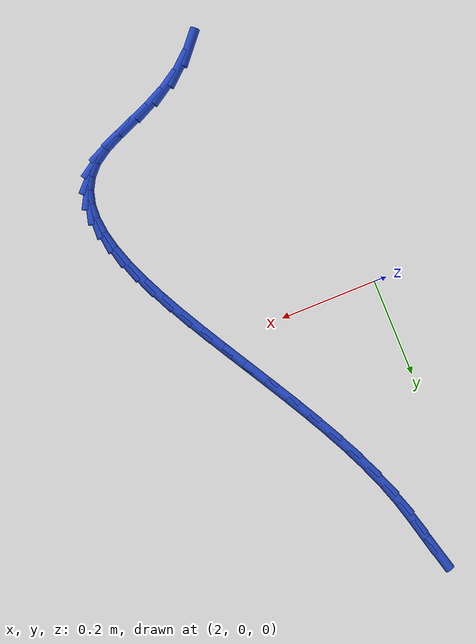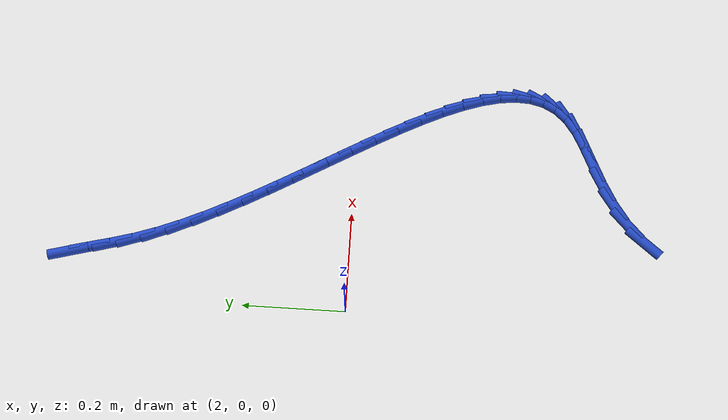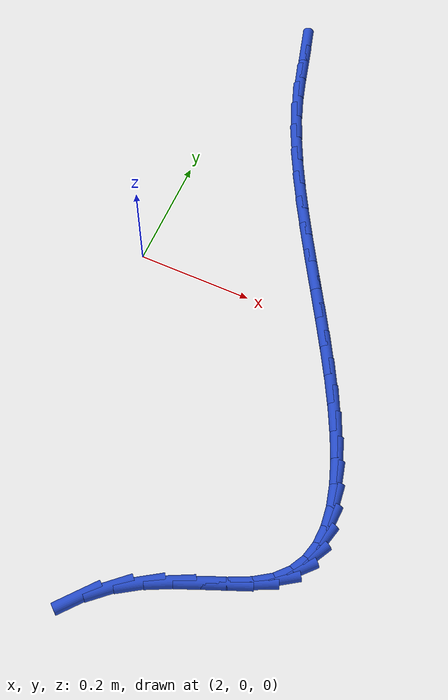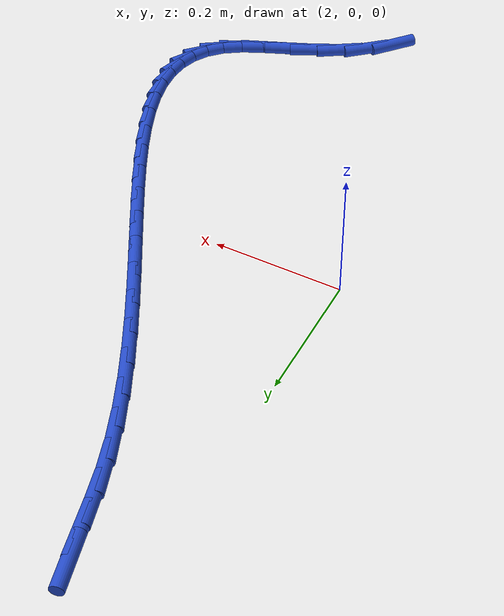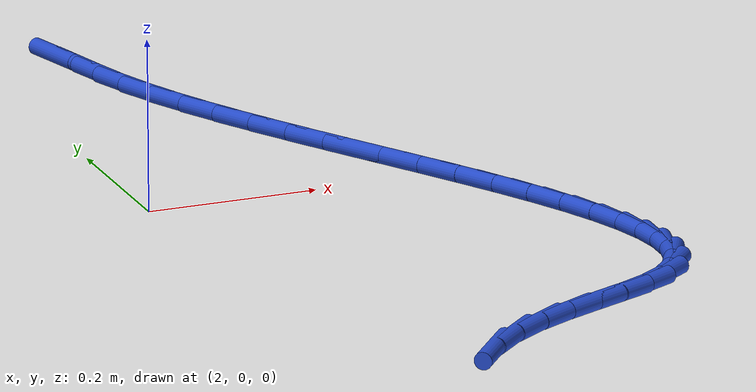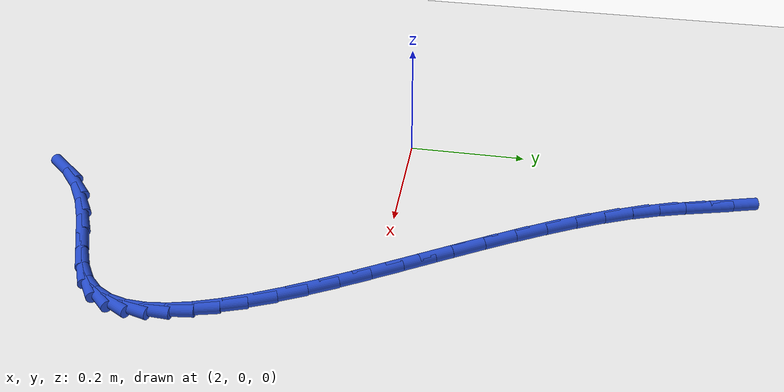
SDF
<sdf version="1.6">
 <world name="default">
  <model name="ground_plane">
   <static>1</static>
   <link name="link">
    <collision name="collision">
     <geometry><plane><normal>0 0 1</normal><size>100 100</size></plane></geometry>
     <surface><friction><ode><mu>100</mu><mu2>50</mu2></ode></friction></surface>
    </collision>
    <visual name="visual">
     <cast_shadows>0</cast_shadows>
     <geometry><plane><normal>0 0 1</normal><size>100 100</size></plane></geometry>
     <material>
      <script><uri>file://media/materials/scripts/gazebo.material</uri><name>Gazebo/WhiteGlow</name></script>
     </material>
    </visual>
   </link>
  </model>
  <model name="line">
   <link name="link_79">
    <pose>2.0872426526098837 0.5481398869635236 0.01 0 1.57 -1.3055801552807036</pose>
    <collision name="collision">
     <geometry><cylinder><radius>0.01</radius><length>0.08</length></cylinder></geometry>
    </collision>
    <visual name="visual">
     <material>
      <script><name>Gazebo/Blue</name><uri>file://media/materials/scripts/gazebo.material</uri></script>
     </material>
     <geometry><cylinder><radius>0.01</radius><length>0.08</length></cylinder></geometry>
    </visual>
   </link>
   <link name="link_80">
    <pose>2.0983881302694583 0.5071057334736936 0.01 0 1.57 -1.319687801918643</pose>
    <collision name="collision">
     <geometry><cylinder><radius>0.01</radius><length>0.08</length></cylinder></geometry>
    </collision>
    <visual name="visual">
     <material>
      <script><name>Gazebo/Blue</name><uri>file://media/materials/scripts/gazebo.material</uri></script>
     </material>
     <geometry><cylinder><radius>0.01</radius><length>0.08</length></cylinder></geometry>
    </visual>
   </link>
   <link name="link_81">
    <pose>2.1094121035455724 0.4641311430382011 0.01 0 1.57 -1.2915837938700183</pose>
    <collision name="collision">
     <geometry><cylinder><radius>0.01</radius><length>0.08</length></cylinder></geometry>
    </collision>
    <visual name="visual">
     <material>
      <script><name>Gazebo/Blue</name><uri>file://media/materials/scripts/gazebo.material</uri></script>
     </material>
     <geometry><cylinder><radius>0.01</radius><length>0.08</length></cylinder></geometry>
    </visual>
   </link>
   <link name="link_82">
    <pose>2.122162606171765 0.41965811741881576 0.01 0 1.57 -1.2324761376864126</pose>
    <collision name="collision">
     <geometry><cylinder><radius>0.01</radius><length>0.08</length></cylinder></geometry>
    </collision>
    <visual name="visual">
     <material>
      <script><name>Gazebo/Blue</name><uri>file://media/materials/scripts/gazebo.material</uri></script>
     </material>
     <geometry><cylinder><radius>0.01</radius><length>0.08</length></cylinder></geometry>
    </visual>
   </link>
   <link name="link_83">
    <pose>2.1381921397637194 0.3740999960352579 0.01 0 1.57 -1.176639903611295</pose>
    <collision name="collision">
     <geometry><cylinder><radius>0.01</radius><length>0.08</length></cylinder></geometry>
    </collision>
    <visual name="visual">
     <material>
      <script><name>Gazebo/Blue</name><uri>file://media/materials/scripts/gazebo.material</uri></script>
     </material>
     <geometry><cylinder><radius>0.01</radius><length>0.08</length></cylinder></geometry>
    </visual>
   </link>
   <link name="link_84">
    <pose>2.1574834820642965 0.327717877789721 0.01 0 1.57 -1.1326743729915973</pose>
    <collision name="collision">
     <geometry><cylinder><radius>0.01</radius><length>0.08</length></cylinder></geometry>
    </collision>
    <visual name="visual">
     <material>
      <script><name>Gazebo/Blue</name><uri>file://media/materials/scripts/gazebo.material</uri></script>
     </material>
     <geometry><cylinder><radius>0.01</radius><length>0.08</length></cylinder></geometry>
    </visual>
   </link>
   <link name="link_85">
    <pose>2.1795002597391573 0.2807225114368136 0.01 0 1.57 -1.0986353999968523</pose>
    <collision name="collision">
     <geometry><cylinder><radius>0.01</radius><length>0.08</length></cylinder></geometry>
    </collision>
    <visual name="visual">
     <material>
      <script><name>Gazebo/Blue</name><uri>file://media/materials/scripts/gazebo.material</uri></script>
     </material>
     <geometry><cylinder><radius>0.01</radius><length>0.08</length></cylinder></geometry>
    </visual>
   </link>
   <link name="link_86">
    <pose>2.203705768825365 0.23332461366495097 0.01 0 1.57 -1.0730784290778024</pose>
    <collision name="collision">
     <geometry><cylinder><radius>0.01</radius><length>0.08</length></cylinder></geometry>
    </collision>
    <visual name="visual">
     <material>
      <script><name>Gazebo/Blue</name><uri>file://media/materials/scripts/gazebo.material</uri></script>
     </material>
     <geometry><cylinder><radius>0.01</radius><length>0.08</length></cylinder></geometry>
    </visual>
   </link>
   <link name="link_87">
    <pose>2.229563305359982 0.18573490116254715 0.01 0 1.57 -1.0549916950004077</pose>
    <collision name="collision">
     <geometry><cylinder><radius>0.01</radius><length>0.08</length></cylinder></geometry>
    </collision>
    <visual name="visual">
     <material>
      <script><name>Gazebo/Blue</name><uri>file://media/materials/scripts/gazebo.material</uri></script>
     </material>
     <geometry><cylinder><radius>0.01</radius><length>0.08</length></cylinder></geometry>
    </visual>
   </link>
   <link name="link_88">
    <pose>2.2565361653800715 0.13816409061801746 0.01 0 1.57 -1.0437345385882713</pose>
    <collision name="collision">
     <geometry><cylinder><radius>0.01</radius><length>0.08</length></cylinder></geometry>
    </collision>
    <visual name="visual">
     <material>
      <script><name>Gazebo/Blue</name><uri>file://media/materials/scripts/gazebo.material</uri></script>
     </material>
     <geometry><cylinder><radius>0.01</radius><length>0.08</length></cylinder></geometry>
    </visual>
   </link>
   <link name="link_89">
    <pose>2.2840876449226966 0.0908228987197769 0.01 0 1.57 -1.0389985104450379</pose>
    <collision name="collision">
     <geometry><cylinder><radius>0.01</radius><length>0.08</length></cylinder></geometry>
    </collision>
    <visual name="visual">
     <material>
      <script><name>Gazebo/Blue</name><uri>file://media/materials/scripts/gazebo.material</uri></script>
     </material>
     <geometry><cylinder><radius>0.01</radius><length>0.08</length></cylinder></geometry>
    </visual>
   </link>
   <link name="link_90">
    <pose>2.311681040024919 0.043922042156240904 0.01 0 1.57 -1.0407953708663125</pose>
    <collision name="collision">
     <geometry><cylinder><radius>0.01</radius><length>0.08</length></cylinder></geometry>
    </collision>
    <visual name="visual">
     <material>
      <script><name>Gazebo/Blue</name><uri>file://media/materials/scripts/gazebo.material</uri></script>
     </material>
     <geometry><cylinder><radius>0.01</radius><length>0.08</length></cylinder></geometry>
    </visual>
   </link>
   <link name="link_91">
    <pose>2.338779646723803 -0.0023277623841766962 0.01 0 1.57 -1.0494755944911212</pose>
    <collision name="collision">
     <geometry><cylinder><radius>0.01</radius><length>0.08</length></cylinder></geometry>
    </collision>
    <visual name="visual">
     <material>
      <script><name>Gazebo/Blue</name><uri>file://media/materials/scripts/gazebo.material</uri></script>
     </material>
     <geometry><cylinder><radius>0.01</radius><length>0.08</length></cylinder></geometry>
    </visual>
   </link>
   <link name="link_92">
    <pose>2.36484676105641 -0.047715798213060476 0.01 0 1.57 -1.0657837930131375</pose>
    <collision name="collision">
     <geometry><cylinder><radius>0.01</radius><length>0.08</length></cylinder></geometry>
    </collision>
    <visual name="visual">
     <material>
      <script><name>Gazebo/Blue</name><uri>file://media/materials/scripts/gazebo.material</uri></script>
     </material>
     <geometry><cylinder><radius>0.01</radius><length>0.08</length></cylinder></geometry>
    </visual>
   </link>
   <link name="link_93">
    <pose>2.3893456790598036 -0.09203134864199504 0.01 0 1.57 -1.0909625241512648</pose>
    <collision name="collision">
     <geometry><cylinder><radius>0.01</radius><length>0.08</length></cylinder></geometry>
    </collision>
    <visual name="visual">
     <material>
      <script><name>Gazebo/Blue</name><uri>file://media/materials/scripts/gazebo.material</uri></script>
     </material>
     <geometry><cylinder><radius>0.01</radius><length>0.08</length></cylinder></geometry>
    </visual>
   </link>
   <link name="link_94">
    <pose>2.4117396967710465 -0.13506369698256643 0.01 0 1.57 -1.1269226356869482</pose>
    <collision name="collision">
     <geometry><cylinder><radius>0.01</radius><length>0.08</length></cylinder></geometry>
    </collision>
    <visual name="visual">
     <material>
      <script><name>Gazebo/Blue</name><uri>file://media/materials/scripts/gazebo.material</uri></script>
     </material>
     <geometry><cylinder><radius>0.01</radius><length>0.08</length></cylinder></geometry>
    </visual>
   </link>
   <link name="link_95">
    <pose>2.431492110227202 -0.17660212654635923 0.01 0 1.57 -1.1765039048191126</pose>
    <collision name="collision">
     <geometry><cylinder><radius>0.01</radius><length>0.08</length></cylinder></geometry>
    </collision>
    <visual name="visual">
     <material>
      <script><name>Gazebo/Blue</name><uri>file://media/materials/scripts/gazebo.material</uri></script>
     </material>
     <geometry><cylinder><radius>0.01</radius><length>0.08</length></cylinder></geometry>
    </visual>
   </link>
   <link name="link_96">
    <pose>2.448066215465332 -0.21643592064495865 0.01 0 1.57 -1.2438423264868461</pose>
    <collision name="collision">
     <geometry><cylinder><radius>0.01</radius><length>0.08</length></cylinder></geometry>
    </collision>
    <visual name="visual">
     <material>
      <script><name>Gazebo/Blue</name><uri>file://media/materials/scripts/gazebo.material</uri></script>
     </material>
     <geometry><cylinder><radius>0.01</radius><length>0.08</length></cylinder></geometry>
    </visual>
   </link>
   <link name="link_97">
    <pose>2.4609253085225 -0.25435436258994953 0.01 0 1.57 -1.334796823856299</pose>
    <collision name="collision">
     <geometry><cylinder><radius>0.01</radius><length>0.08</length></cylinder></geometry>
    </collision>
    <visual name="visual">
     <material>
      <script><name>Gazebo/Blue</name><uri>file://media/materials/scripts/gazebo.material</uri></script>
     </material>
     <geometry><cylinder><radius>0.01</radius><length>0.08</length></cylinder></geometry>
    </visual>
   </link>
   <link name="link_98">
    <pose>2.469532685435768 -0.29014673569291644 0.01 0 1.57 -1.4571382424291024</pose>
    <collision name="collision">
     <geometry><cylinder><radius>0.01</radius><length>0.08</length></cylinder></geometry>
    </collision>
    <visual name="visual">
     <material>
      <script><name>Gazebo/Blue</name><uri>file://media/materials/scripts/gazebo.material</uri></script>
     </material>
     <geometry><cylinder><radius>0.01</radius><length>0.08</length></cylinder></geometry>
    </visual>
   </link>
   <link name="link_99">
    <pose>2.4733516422421995 -0.3236023232654459 0.01 0 1.57 1.5221043186005847</pose>
    <collision name="collision">
     <geometry><cylinder><radius>0.01</radius><length>0.08</length></cylinder></geometry>
    </collision>
    <visual name="visual">
     <material>
      <script><name>Gazebo/Blue</name><uri>file://media/materials/scripts/gazebo.material</uri></script>
     </material>
     <geometry><cylinder><radius>0.01</radius><length>0.08</length></cylinder></geometry>
    </visual>
   </link>
   <link name="link_100">
    <pose>2.4718454749788576 -0.3545104086191223 0.01 0 1.57 1.3147974986627495</pose>
    <collision name="collision">
     <geometry><cylinder><radius>0.01</radius><length>0.08</length></cylinder></geometry>
    </collision>
    <visual name="visual">
     <material>
      <script><name>Gazebo/Blue</name><uri>file://media/materials/scripts/gazebo.material</uri></script>
     </material>
     <geometry><cylinder><radius>0.01</radius><length>0.08</length></cylinder></geometry>
    </visual>
   </link>
   <link name="link_101">
    <pose>2.464477479682805 -0.3826602750655307 0.01 0 1.57 1.0704867986627695</pose>
    <collision name="collision">
     <geometry><cylinder><radius>0.01</radius><length>0.08</length></cylinder></geometry>
    </collision>
    <visual name="visual">
     <material>
      <script><name>Gazebo/Blue</name><uri>file://media/materials/scripts/gazebo.material</uri></script>
     </material>
     <geometry><cylinder><radius>0.01</radius><length>0.08</length></cylinder></geometry>
    </visual>
   </link>
   <link name="link_102">
    <pose>2.4507109523911037 -0.4078412059162561 0.01 0 1.57 0.8158202208240376</pose>
    <collision name="collision">
     <geometry><cylinder><radius>0.01</radius><length>0.08</length></cylinder></geometry>
    </collision>
    <visual name="visual">
     <material>
      <script><name>Gazebo/Blue</name><uri>file://media/materials/scripts/gazebo.material</uri></script>
     </material>
     <geometry><cylinder><radius>0.01</radius><length>0.08</length></cylinder></geometry>
    </visual>
   </link>
   <link name="link_103">
    <pose>2.430009189140817 -0.42984248448288365 0.01 0 1.57 0.5879480357711722</pose>
    <collision name="collision">
     <geometry><cylinder><radius>0.01</radius><length>0.08</length></cylinder></geometry>
    </collision>
    <visual name="visual">
     <material>
      <script><name>Gazebo/Blue</name><uri>file://media/materials/scripts/gazebo.material</uri></script>
     </material>
     <geometry><cylinder><radius>0.01</radius><length>0.08</length></cylinder></geometry>
    </visual>
   </link>
   <link name="link_104">
    <pose>2.401951827123282 -0.44854518109033703 0.01 0 1.57 0.4458094744465332</pose>
    <collision name="collision">
     <geometry><cylinder><radius>0.01</radius><length>0.08</length></cylinder></geometry>
    </collision>
    <visual name="visual">
     <material>
      <script><name>Gazebo/Blue</name><uri>file://media/materials/scripts/gazebo.material</uri></script>
     </material>
     <geometry><cylinder><radius>0.01</radius><length>0.08</length></cylinder></geometry>
    </visual>
   </link>
   <link name="link_105">
    <pose>2.367570503177247 -0.4649759169379147 0.01 0 1.57 0.3913463664327163</pose>
    <collision name="collision">
     <geometry><cylinder><radius>0.01</radius><length>0.08</length></cylinder></geometry>
    </collision>
    <visual name="visual">
     <material>
      <script><name>Gazebo/Blue</name><uri>file://media/materials/scripts/gazebo.material</uri></script>
     </material>
     <geometry><cylinder><radius>0.01</radius><length>0.08</length></cylinder></geometry>
    </visual>
   </link>
   <link name="link_106">
    <pose>2.3288831643679657 -0.48093945979292274 0.01 0 1.57 0.39999568893749193</pose>
    <collision name="collision">
     <geometry><cylinder><radius>0.01</radius><length>0.08</length></cylinder></geometry>
    </collision>
    <visual name="visual">
     <material>
      <script><name>Gazebo/Blue</name><uri>file://media/materials/scripts/gazebo.material</uri></script>
     </material>
     <geometry><cylinder><radius>0.01</radius><length>0.08</length></cylinder></geometry>
    </visual>
   </link>
   <link name="link_107">
    <pose>2.2879265722632307 -0.49825542106940623 0.01 0 1.57 0.46157597236085</pose>
    <collision name="collision">
     <geometry><cylinder><radius>0.01</radius><length>0.08</length></cylinder></geometry>
    </collision>
    <visual name="visual">
     <material>
      <script><name>Gazebo/Blue</name><uri>file://media/materials/scripts/gazebo.material</uri></script>
     </material>
     <geometry><cylinder><radius>0.01</radius><length>0.08</length></cylinder></geometry>
    </visual>
   </link>
   <link name="link_108">
    <pose>2.246737488430834 -0.5187434121814105 0.01 0 1.57 0.574221441793723</pose>
    <collision name="collision">
     <geometry><cylinder><radius>0.01</radius><length>0.08</length></cylinder></geometry>
    </collision>
    <visual name="visual">
     <material>
      <script><name>Gazebo/Blue</name><uri>file://media/materials/scripts/gazebo.material</uri></script>
     </material>
     <geometry><cylinder><radius>0.01</radius><length>0.08</length></cylinder></geometry>
    </visual>
   </link>
   <link name="link_109">
    <pose>2.207352674438567 -0.5442230445429811 0.01 0 1.57 0.7295994892352478</pose>
    <collision name="collision">
     <geometry><cylinder><radius>0.01</radius><length>0.08</length></cylinder></geometry>
    </collision>
    <visual name="visual">
     <material>
      <script><name>Gazebo/Blue</name><uri>file://media/materials/scripts/gazebo.material</uri></script>
     </material>
     <geometry><cylinder><radius>0.01</radius><length>0.08</length></cylinder></geometry>
    </visual>
   </link>
   <link name="link_110">
    <pose>2.171568883334009 -0.5762207859086198 0.01 0 1.57 0.8723531948802867</pose>
    <collision name="collision">
     <geometry><cylinder><radius>0.01</radius><length>0.08</length></cylinder></geometry>
    </collision>
    <visual name="visual">
     <material>
      <script><name>Gazebo/Blue</name><uri>file://media/materials/scripts/gazebo.material</uri></script>
     </material>
     <geometry><cylinder><radius>0.01</radius><length>0.08</length></cylinder></geometry>
    </visual>
   </link>
  </model>
 </world>
</sdf>
